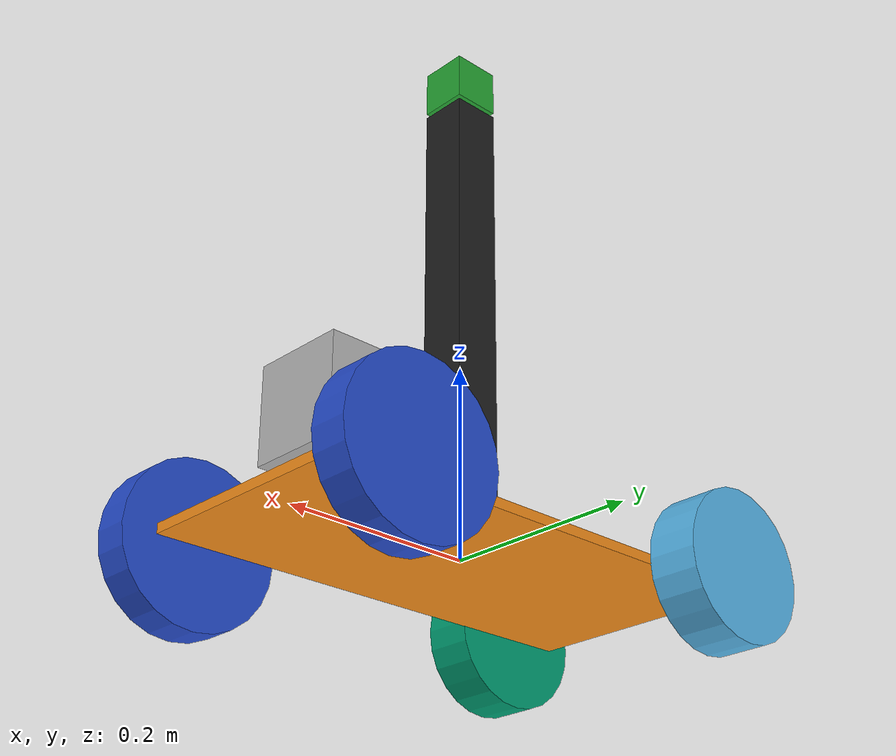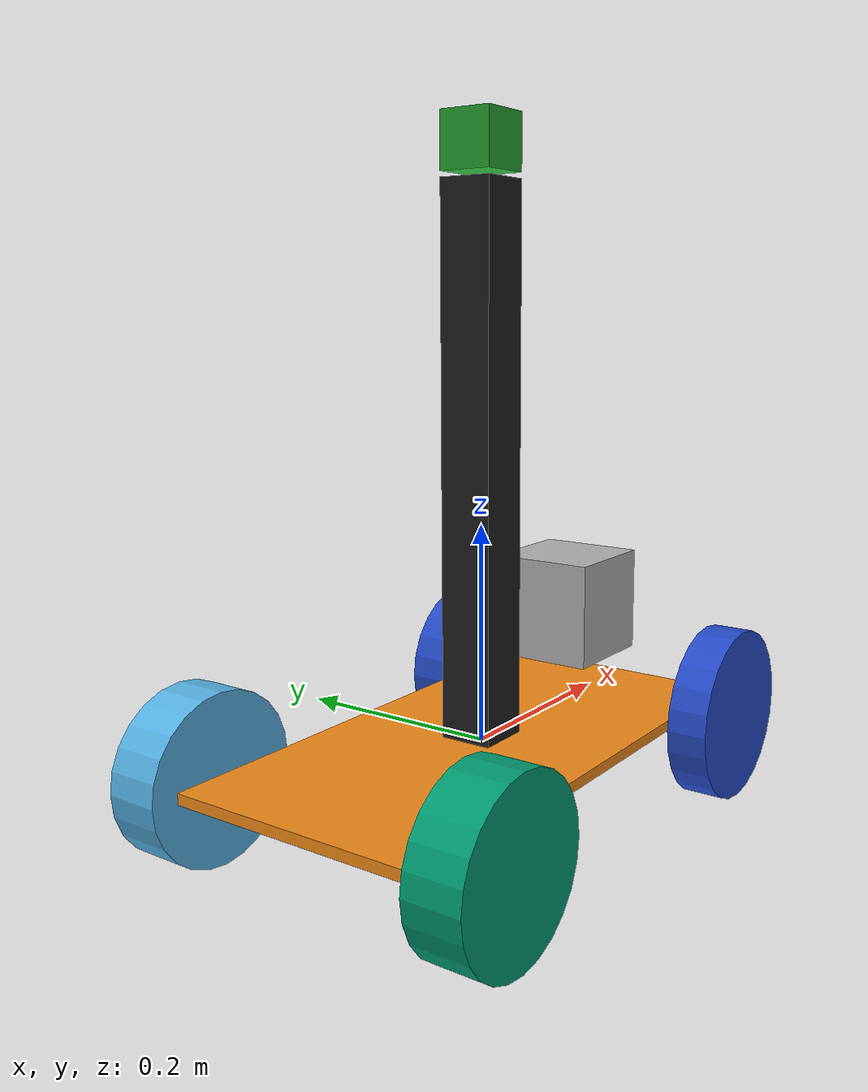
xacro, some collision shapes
<?xml version='1.0'?>

<robot name="myrobot" xmlns:xacro="http://www.ros.org/wiki/xacro">

  <!--wheels -->
  <xacro:property name="drive_wheel_diameter" value="0.1651"/>
  <xacro:property name="drive_wheel_width" value="0.0381"/>
  <xacro:property name="drive_wheel_mass" value="3.63"/>

  <xacro:property name="caster_wheel_diameter" value="0.1524"/>
  <xacro:property name="caster_wheel_width" value="0.0508"/>
  <xacro:property name="caster_wheel_mass" value="1.81"/>

  <!--chassis -->
  <xacro:property name="chassis_length" value="0.50"/>
  <xacro:property name="chassis_width" value="0.25"/>
  <xacro:property name="chassis_height" value="0.01"/>
  <xacro:property name="chassis_mass" value="37"/>
  <xacro:property name="vehicle_clearance" value="0.25"/>

  <!--camera -->
  <xacro:property name="cameraSize" value="0.05"/>
  <xacro:property name="cameraMass" value="0.03"/>
  <xacro:property name="camera_mount_height" value="0.5"/>
  <xacro:property name="camera_mount_width" value="0.05"/>
  <xacro:property name="camera_mount_length" value="0.05"/>
  <xacro:property name="camera_mount_mass" value="0.05"/>

  <!--LiDAR-->

  <!--INS -->

  <!--Payload -->

   <!--Laptop -->

  <xacro:include filename="$(find mybot_description)/urdf/mybot.gazebo" />
  <xacro:include filename="$(find mybot_description)/urdf/materials.xacro" />
  <xacro:include filename="$(find mybot_description)/urdf/macros.xacro" />

  <link name='chassis'>
    <pose>0 0 0.1 0 0 0</pose>

    <inertial>
      <mass value="${chassis_mass}"/>
      <origin xyz="0.0 0 0.1" rpy=" 0 0 0"/>
      <inertia
          ixx="${2 / 5 * chassis_mass * 1 ** 2}" ixy="0" ixz="0"
          iyy="${2 / 5 * chassis_mass * 1 ** 2}" iyz="0"
          izz="${2 / 5 * chassis_mass * 1 ** 2}"
      />
    </inertial>

    <collision name='collision'>
      <geometry>
        <box size="${chassis_length} ${chassis_width} ${chassis_height}"/>
      </geometry>
    </collision>

    <visual name='chassis_visual'>
      <origin xyz="0 0 0" rpy=" 0 0 0"/>
      <geometry>
        <box size="${chassis_length} ${chassis_width} ${chassis_height}"/>
      </geometry>
    </visual>
  </link>

  <link name="left_caster">
    <collision name='left_caster_collision'>
      <origin xyz="0 0 0" rpy=" 0 0 0"/>
      <geometry>
        <cylinder radius="${caster_wheel_diameter/2}" length="${caster_wheel_width}"/>
      </geometry>
    </collision>

    <visual name="left_caster_visual">
      <origin xyz="0 0 0" rpy="0 1.5707 1.5707"/>
      <geometry>
        <cylinder radius="${caster_wheel_diameter/2}" length="${caster_wheel_width}"/>
      </geometry>
    </visual>
    <inertial>
      <origin xyz="0 0 0" rpy="0 1.5707 1.5707"/>
      <mass value="${caster_wheel_mass}"/>
      <cylinder_inertia m="${caster_wheel_mass}" r="${caster_wheel_diameter/2}" h="${drive_wheel_width}"/>
      <inertia
        ixx="1.0" ixy="0.0" ixz="0.0"
        iyy="1.0" iyz="0.0"
        izz="1.0"/>
    </inertial>
  </link>

  <link name="right_caster">
    <collision name='right_caster_collision'>
      <origin xyz="0 0 0" rpy="0 1.5707 1.5707"/>
      <geometry>
        <cylinder radius="${caster_wheel_diameter/2}" length="${caster_wheel_width}"/>
      </geometry>
    </collision>

    <visual name="right_caster_visual">
      <origin xyz="0 0 0" rpy="0 1.5707 1.5707"/>
      <geometry>
        <cylinder radius="${caster_wheel_diameter/2}" length="${caster_wheel_width}"/>
      </geometry>
    </visual>
    <inertial>
      <origin xyz="0 0 0" rpy="0 1.5707 1.5707"/>
      <mass value="${caster_wheel_mass}"/>
      <cylinder_inertia m="${caster_wheel_mass}" r="${caster_wheel_diameter/2}" h="${caster_wheel_width}"/>
      <inertia
        ixx="1.0" ixy="0.0" ixz="0.0"
        iyy="1.0" iyz="0.0"
        izz="1.0"/>
    </inertial>
  </link>

  <link name="left_wheel">
    <collision name="collision">
      <origin xyz="0 0 0" rpy="0 1.5707 1.5707"/>
      <geometry>
        <cylinder radius="${drive_wheel_diameter/2}" length="${drive_wheel_width}"/>
      </geometry>
    </collision>
    <visual name="left_wheel_visual">
      <origin xyz="0 0 0" rpy="0 1.5707 1.5707"/>
      <geometry>
        <cylinder radius="${drive_wheel_diameter/2}" length="${drive_wheel_width}"/>
      </geometry>
    </visual>
    <inertial>
      <origin xyz="0 0 0" rpy="0 1.5707 1.5707"/>
      <mass value="${drive_wheel_mass}"/>
      <cylinder_inertia m="${drive_wheel_mass}" r="${drive_wheel_diameter/2}" h="${drive_wheel_width}"/>
      <inertia
        ixx="1.0" ixy="0.0" ixz="0.0"
        iyy="1.0" iyz="0.0"
        izz="1.0"/>
    </inertial>
  </link>

  <link name="right_wheel">
    <!--origin xyz="0.1 -0.13 0.1" rpy="0 1.5707 1.5707"/-->
    <collision name="collision">
      <origin xyz="0 0 0" rpy="0 1.5707 1.5707"/>
      <geometry>
        <cylinder radius="${drive_wheel_diameter/2}" length="${drive_wheel_width}"/>
      </geometry>
    </collision>
    <visual name="right_wheel_visual">
      <origin xyz="0 0 0" rpy="0 1.5707 1.5707"/>
      <geometry>
        <cylinder radius="${drive_wheel_diameter/2}" length="${drive_wheel_width}"/>
      </geometry>
    </visual>
    <inertial>
      <origin xyz="0 0 0" rpy="0 1.5707 1.5707"/>
      <mass value="5"/>
      <cylinder_inertia m="${drive_wheel_mass}" r="${drive_wheel_diameter/2}" h="${drive_wheel_width}"/>
      <inertia
        ixx="1.0" ixy="0.0" ixz="0.0"
        iyy="1.0" iyz="0.0"
        izz="1.0"/>
    </inertial>
  </link>

  <joint type="continuous" name="left_wheel_hinge">
    <origin xyz="0.2 0.15 0" rpy="0 0 0"/>
    <child link="left_wheel"/>
    <parent link="chassis"/>
    <axis xyz="0 1 0" rpy="0 0 0"/>
    <limit effort="100" velocity="100"/>
    <joint_properties damping="0.0" friction="0.0"/>
  </joint>

  <joint type="continuous" name="right_wheel_hinge">
    <origin xyz="0.2 -0.15 0" rpy="0 0 0"/>
    <child link="right_wheel"/>
    <parent link="chassis"/>
    <axis xyz="0 1 0" rpy="0 0 0"/>
    <limit effort="100" velocity="100"/>
    <joint_properties damping="0.0" friction="0.0"/>
  </joint>

  <joint type="continuous" name="left_caster_hinge">
    <origin xyz="-0.2 0.15 0" rpy="0 0 0"/>
    <child link="left_caster"/>
    <parent link="chassis"/>
    <axis xyz="0 1 0" rpy="0 0 0"/>
    <limit effort="100" velocity="100"/>
    <joint_properties damping="0.0" friction="0.0"/>
  </joint>

  <joint type="continuous" name="right_caster_hinge">
    <origin xyz="-0.2 -0.15 0" rpy="0 0 0"/>
    <child link="right_caster"/>
    <parent link="chassis"/>
    <axis xyz="0 1 0" rpy="0 0 0"/>
    <limit effort="100" velocity="100"/>
    <joint_properties damping="0.0" friction="0.0"/>
  </joint>

  <link name="camera">
    <collision>
      <origin xyz="0 0 0" rpy="0 0 0"/>
      <geometry>
        <box size="${cameraSize} ${cameraSize} ${cameraSize}"/>
      </geometry>
    </collision>

    <visual>
      <origin xyz="0 0 0" rpy="0 0 0"/>
      <geometry>
        <box size="${cameraSize} ${cameraSize} ${cameraSize}"/>
      </geometry>
      <material name="green"/>
    </visual>

    <inertial>
      <mass value="${cameraMass}" />
      <origin xyz="0 0 0" rpy="0 0 0"/>
      <box_inertia m="${cameraMass}" x="${cameraSize}" y="${cameraSize}" z="${cameraSize}" />
      <inertia ixx="1e-6" ixy="0" ixz="0" iyy="1e-6" iyz="0" izz="1e-6" />
    </inertial>
  </link>

  <link name="camera_mount">
    <collision>
      <origin xyz="0 0 0" rpy="0 0 0"/>
      <geometry>
        <box size="${camera_mount_length} ${camera_mount_width} ${camera_mount_height}"/>
      </geometry>
    </collision>

    <visual>
      <origin xyz="0 0 0" rpy="0 0 0"/>
      <geometry>
        <box size="${camera_mount_length} ${camera_mount_width} ${camera_mount_height}"/>
      </geometry>
      <material name="black"/>
    </visual>

    <inertial>
      <mass value="${camera_mount_mass}" />
      <origin xyz="0 0 0" rpy="0 0 0"/>
      <box_inertia m="${camera_mount_mass}" x="${camera_mount_length}" y="${camera_mount_width}" z="${camera_mount_height}" />
      <inertia ixx="1e-6" ixy="0" ixz="0" iyy="1e-6" iyz="0" izz="1e-6" />
    </inertial>
  </link>

  <joint name="camera_mount_joint" type="fixed">
    <axis xyz="0 1 0" />
    <origin xyz="0 0 ${vehicle_clearance}" rpy="0 0 0"/>
    <parent link="chassis"/>
    <child link="camera_mount"/>
  </joint>

  <joint name="camera_joint" type="fixed">
    <axis xyz="0 1 0" />
    <origin xyz="0 0 0.28" rpy="0 0 0"/>
    <parent link="camera_mount"/>
    <child link="camera"/>
  </joint>

  <!-- Hokuyo Laser -->
  <link name="hokuyo">
    <collision>
      <origin xyz="0 0 0" rpy="0 0 0"/>
      <geometry>
    <box size="0.1 0.1 0.1"/>
      </geometry>
    </collision>

    <visual>
      <origin xyz="0 0 0" rpy="0 0 0"/>
      <geometry>
        <mesh filename="package://mybot_description/meshes/hokuyo.dae"/>
      </geometry>
    </visual>

    <inertial>
      <mass value="1e-5" />
      <origin xyz="0 0 0" rpy="0 0 0"/>
      <inertia ixx="1e-6" ixy="0" ixz="0" iyy="1e-6" iyz="0" izz="1e-6" />
    </inertial>
  </link>

  <joint name="hokuyo_joint" type="fixed">
    <axis xyz="0 1 0" />
    <origin xyz=".15 0 .1" rpy="0 0 0"/>
    <parent link="chassis"/>
    <child link="hokuyo"/>
  </joint>

</robot>
